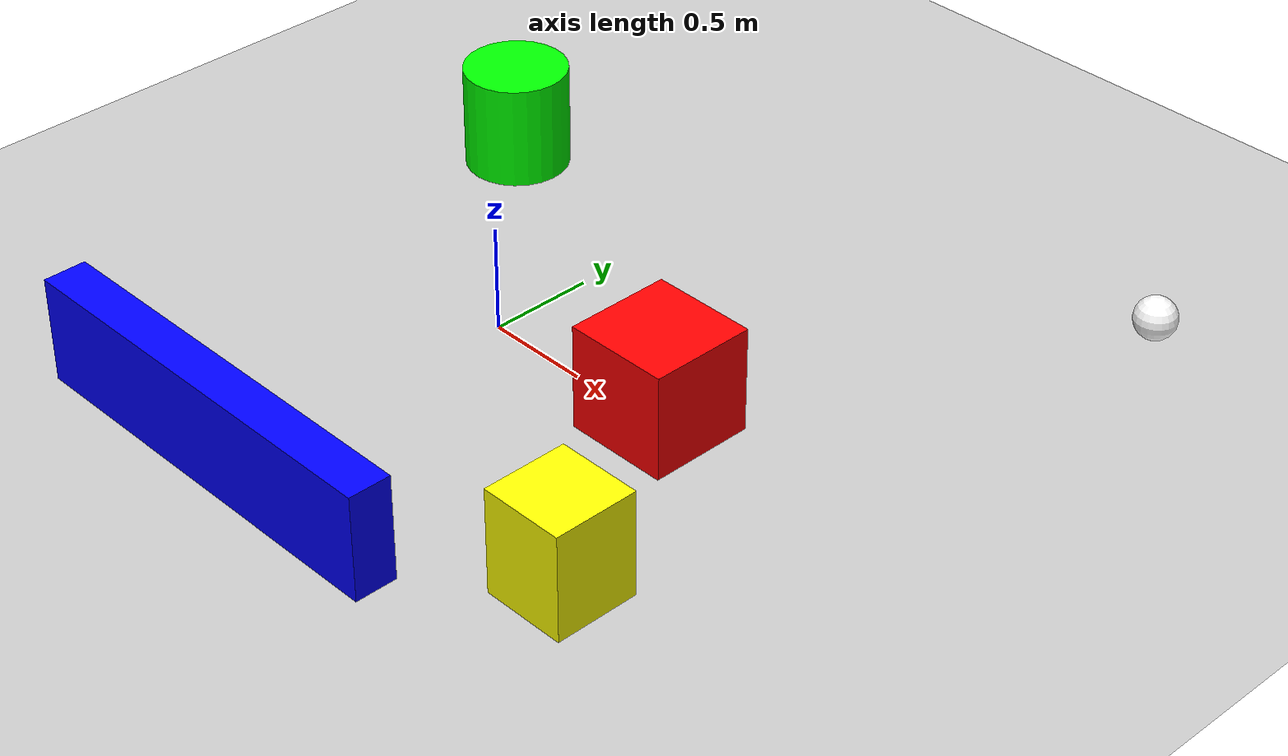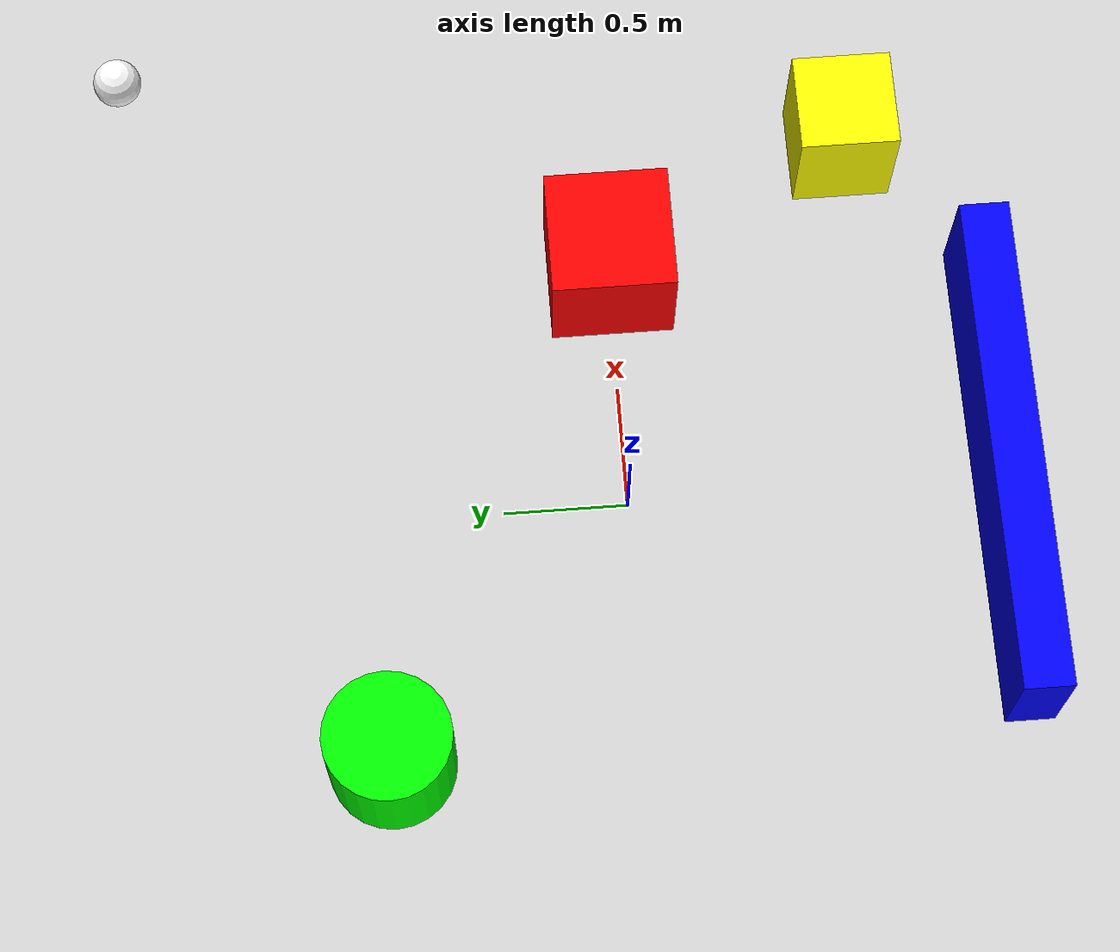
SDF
<?xml version="1.0"?>
<sdf version="1.6">
  <world name="bocbot_hunter_world">

    <!-- Physique -->
    <physics type="ode">
      <max_step_size>0.001</max_step_size>
      <real_time_factor>1</real_time_factor>
      <real_time_update_rate>1000</real_time_update_rate>
    </physics>

    <!-- Scene -->
    <scene>
      <ambient>0.4 0.4 0.4 1</ambient>
      <background>0.7 0.7 0.7 1</background>
      <shadows>true</shadows>
    </scene>

    <!-- Soleil (luz) -->
    <light type="directional" name="sun">
      <cast_shadows>1</cast_shadows>
      <pose>0 0 10 0 0 0</pose>
      <diffuse>0.8 0.8 0.8 1</diffuse>
      <specular>0.2 0.2 0.2 1</specular>
      <attenuation>
        <range>1000</range>
        <constant>0.9</constant>
        <linear>0.01</linear>
        <quadratic>0.001</quadratic>
      </attenuation>
      <direction>-0.5 0.1 -0.9</direction>
    </light>

    <!-- Sol -->
    <model name="ground_plane">
      <static>true</static>
      <link name="link">
        <collision name="collision">
          <geometry>
            <plane>
              <normal>0 0 1</normal>
              <size>100 100</size>
            </plane>
          </geometry>
          <surface>
            <friction>
              <ode>
                <mu>100</mu>
                <mu2>50</mu2>
              </ode>
            </friction>
          </surface>
        </collision>
        <visual name="visual">
          <cast_shadows>false</cast_shadows>
          <geometry>
            <plane>
              <normal>0 0 1</normal>
              <size>100 100</size>
            </plane>
          </geometry>
          <material>
            <script>
              <uri>file://media/materials/scripts/gazebo.material</uri>
              <name>Gazebo/Grey</name>
            </script>
          </material>
        </visual>
      </link>
    </model>

    <!-- Balle blanche (cible) -->
    <model name="white_ball">
      <static>false</static>
      <pose>2.0 2.0 0.1 0 0 0</pose>
      <link name="link">
        <collision name="collision">
          <geometry>
            <sphere>
              <radius>0.1</radius>
            </sphere>
          </geometry>
          <surface>
            <friction>
              <ode>
                <mu>0.5</mu>
              </ode>
            </friction>
          </surface>
        </collision>
        <visual name="visual">
          <geometry>
            <sphere>
              <radius>0.1</radius>
            </sphere>
          </geometry>
          <material>
            <ambient>1 1 1 1</ambient>
            <diffuse>1 1 1 1</diffuse>
            <specular>0.5 0.5 0.5 1</specular>
          </material>
        </visual>
        <inertial>
          <mass>0.5</mass>
          <inertia>
            <ixx>0.002</ixx>
            <ixy>0</ixy>
            <ixz>0</ixz>
            <iyy>0.002</iyy>
            <iyz>0</iyz>
            <izz>0.002</izz>
          </inertia>
        </inertial>
      </link>
    </model>

    <!-- Obstacle 1 - Cube -->
    <model name="obstacle1">
      <static>true</static>
      <pose>1.0 0.0 0.25 0 0 0</pose>
      <link name="link">
        <collision name="collision">
          <geometry>
            <box>
              <size>0.5 0.5 0.5</size>
            </box>
          </geometry>
        </collision>
        <visual name="visual">
          <geometry>
            <box>
              <size>0.5 0.5 0.5</size>
            </box>
          </geometry>
          <material>
            <ambient>1 0 0 1</ambient>
            <diffuse>1 0 0 1</diffuse>
          </material>
        </visual>
      </link>
    </model>

    <!-- Obstacle 2 - Cylindre -->
    <model name="obstacle2">
      <static>true</static>
      <pose>-1.0 1.0 0.25 0 0 0</pose>
      <link name="link">
        <collision name="collision">
          <geometry>
            <cylinder>
              <radius>0.25</radius>
              <length>0.5</length>
            </cylinder>
          </geometry>
        </collision>
        <visual name="visual">
          <geometry>
            <cylinder>
              <radius>0.25</radius>
              <length>0.5</length>
            </cylinder>
          </geometry>
          <material>
            <ambient>0 1 0 1</ambient>
            <diffuse>0 1 0 1</diffuse>
          </material>
        </visual>
      </link>
    </model>

    <!-- Obstacle 3 - Mur -->
    <model name="obstacle3">
      <static>true</static>
      <pose>0.0 -1.5 0.25 0 0 0</pose>
      <link name="link">
        <collision name="collision">
          <geometry>
            <box>
              <size>2.0 0.2 0.5</size>
            </box>
          </geometry>
        </collision>
        <visual name="visual">
          <geometry>
            <box>
              <size>2.0 0.2 0.5</size>
            </box>
          </geometry>
          <material>
            <ambient>0 0 1 1</ambient>
            <diffuse>0 0 1 1</diffuse>
          </material>
        </visual>
      </link>
    </model>

    <!-- Obstacle 4 - Cube -->
    <model name="obstacle4">
      <static>true</static>
      <pose>1.5 -1.0 0.25 0 0 0</pose>
      <link name="link">
        <collision name="collision">
          <geometry>
            <box>
              <size>0.4 0.4 0.5</size>
            </box>
          </geometry>
        </collision>
        <visual name="visual">
          <geometry>
            <box>
              <size>0.4 0.4 0.5</size>
            </box>
          </geometry>
          <material>
            <ambient>1 1 0 1</ambient>
            <diffuse>1 1 0 1</diffuse>
          </material>
        </visual>
      </link>
    </model>

    <!-- GUI -->
    <gui fullscreen='0'>
      <camera name='user_camera'>
        <pose>0 0 8 0 0 1.57</pose>
        <view_controller>orbit</view_controller>
      </camera>
    </gui>

  </world>
</sdf>
